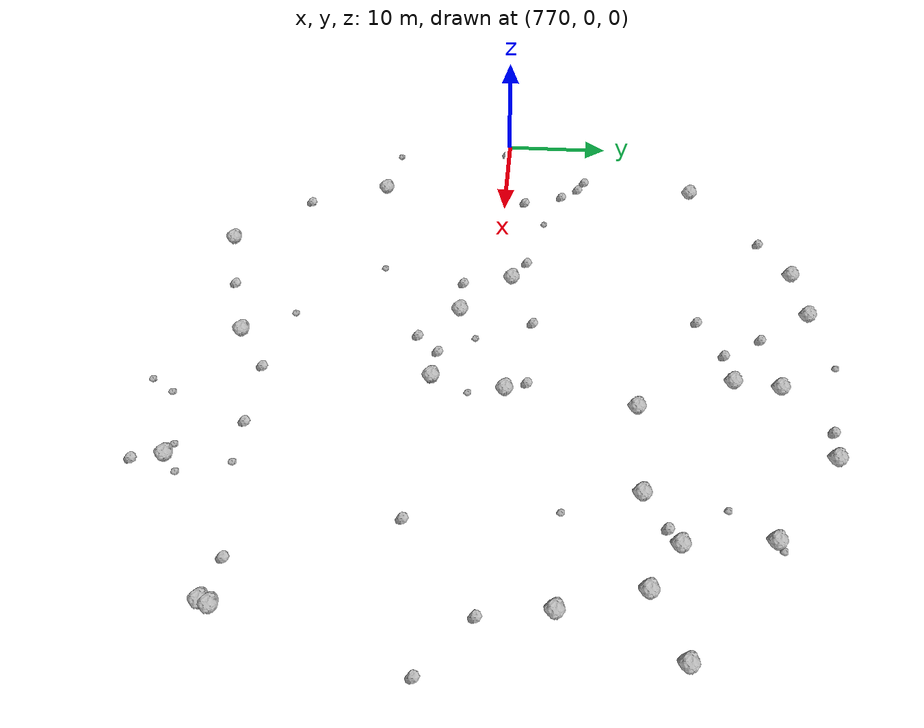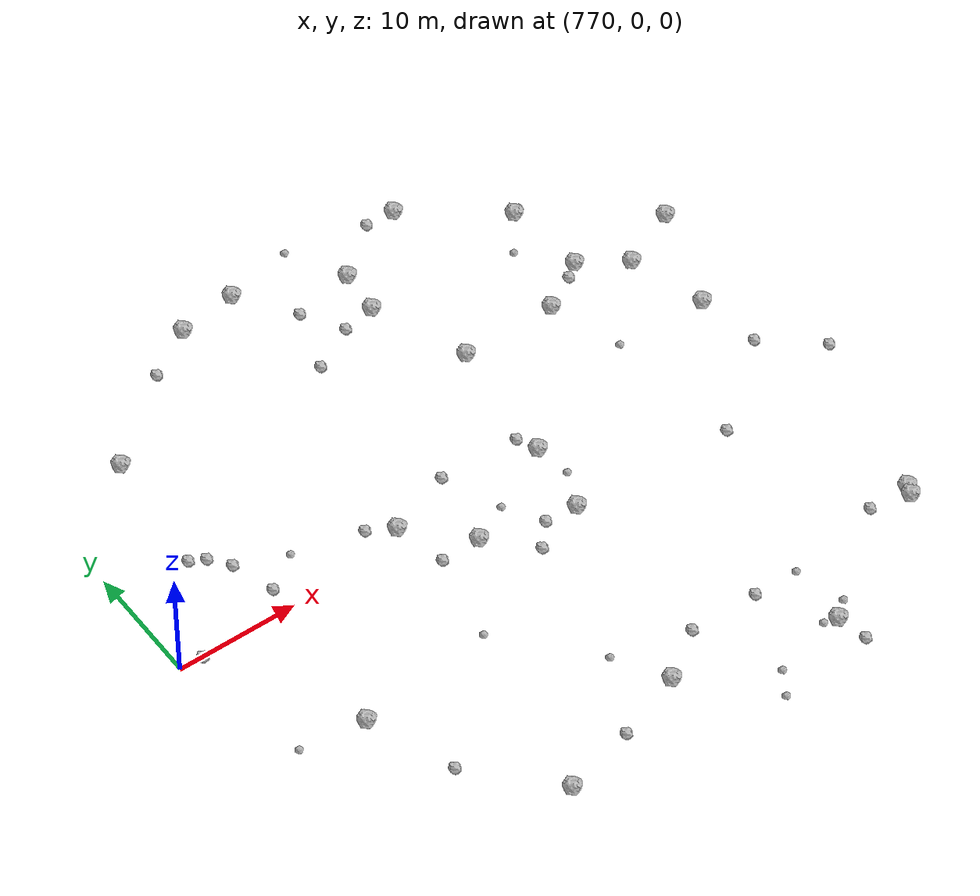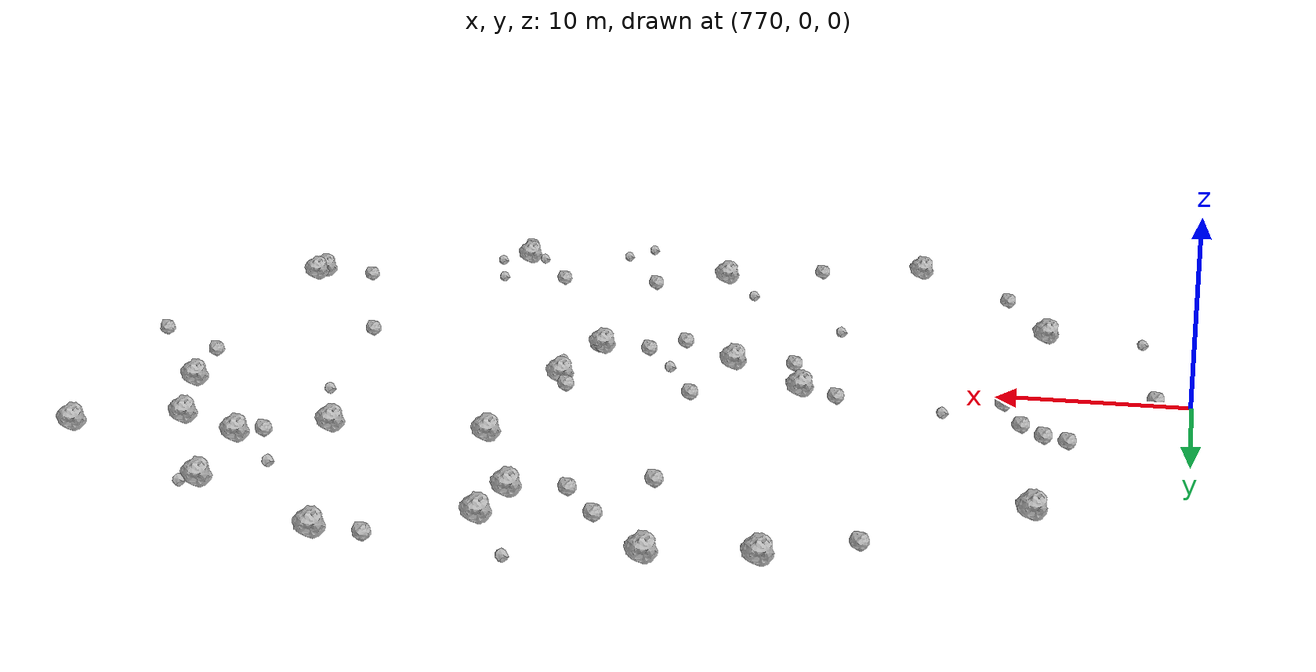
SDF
<sdf version="1.6">
 <world name="default">
  <include><uri>model://sun</uri></include>
  <model name="rock1_20_4">
   <include><uri>model://rock1</uri><pose>801.069976422622 20.078748137291107 0.5 0 0 0</pose></include>
  </model>
  <model name="rock1_20_5">
   <include><uri>model://rock1</uri><pose>804.178209006997 12.081782294476277 0.5 0 0 0</pose></include>
  </model>
  <model name="rock1_20_6">
   <include><uri>model://rock1</uri><pose>819.9806219164418 12.28699054576007 0.5 0 0 0</pose></include>
  </model>
  <model name="rock1_20_7">
   <include><uri>model://rock1</uri><pose>793.1610446389736 27.39999369383407 0.5 0 0 0</pose></include>
  </model>
  <model name="rock1_20_8">
   <include><uri>model://rock1</uri><pose>821.8484288972861 5.817812789148789 0.5 0 0 0</pose></include>
  </model>
  <model name="rock1_20_9">
   <include><uri>model://rock1</uri><pose>816.3222026670322 14.710271592381837 0.5 0 0 0</pose></include>
  </model>
  <model name="rock1_20_10">
   <include><uri>model://rock1</uri><pose>797.9584795260737 -21.758113614595313 0.5 0 0 0</pose></include>
  </model>
  <model name="rock1_20_11">
   <include><uri>model://rock1</uri><pose>815.6514114269642 21.631238293047993 0.5 0 0 0</pose></include>
  </model>
  <model name="rock1_20_12">
   <include><uri>model://rock1</uri><pose>802.0379653599541 -4.835314926236304 0.5 0 0 0</pose></include>
  </model>
  <model name="rock1_20_13">
   <include><uri>model://rock1</uri><pose>794.378756183995 -3.11591462428364 0.5 0 0 0</pose></include>
  </model>
  <model name="rock1_20_14">
   <include><uri>model://rock1</uri><pose>808.1970384261424 27.264305149074936 0.5 0 0 0</pose></include>
  </model>
  <model name="rock1_20_15">
   <include><uri>model://rock1</uri><pose>824.9921686273381 14.616219591472309 0.5 0 0 0</pose></include>
  </model>
  <model name="rock1_20_16">
   <include><uri>model://rock1</uri><pose>812.224707252752 12.154324516579052 0.5 0 0 0</pose></include>
  </model>
  <model name="rock1_20_17">
   <include><uri>model://rock1</uri><pose>788.2042530408501 26.656675445883884 0.5 0 0 0</pose></include>
  </model>
  <model name="rock1_20_18">
   <include><uri>model://rock1</uri><pose>777.0351825357711 18.315417942275573 0.5 0 0 0</pose></include>
  </model>
  <model name="rock1_20_19">
   <include><uri>model://rock1</uri><pose>822.660484596484 -18.44237490201177 0.5 0 0 0</pose></include>
  </model>
  <model name="rock1_20_20">
   <include><uri>model://rock1</uri><pose>822.9556082863945 -17.682068416761275 0.5 0 0 0</pose></include>
  </model>
  <model name="rock1_20_21">
   <include><uri>model://rock1</uri><pose>790.0991013014509 1.2388591656285968 0.5 0 0 0</pose></include>
  </model>
  <model name="rock1_20_22">
   <include><uri>model://rock1</uri><pose>786.4048347191468 -25.346984360202676 0.5 0 0 0</pose></include>
  </model>
  <model name="rock1_20_23">
   <include><uri>model://rock1</uri><pose>802.986500322176 1.3150329846300828 0.5 0 0 0</pose></include>
  </model>
  <model name="rock1_20_24">
   <include><uri>model://rock1</uri><pose>778.0695231220017 -11.933511151313226 0.5 0 0 0</pose></include>
  </model>
  <model name="rock1_20_25">
   <include><uri>model://rock1</uri><pose>811.0502471301488 -24.472389418654657 0.5 0 0 0</pose></include>
  </model>
  <model name="rock1_20_26">
   <include><uri>model://rock1</uri><pose>801.4893059405915 23.89189652420356 0.5 0 0 0</pose></include>
  </model>
  <model name="rock2_20_0">
   <include><uri>model://rock2</uri><pose>802.2349687781324 3.114232884142858 0.3 0 0 0</pose></include>
  </model>
  <model name="rock2_20_1">
   <include><uri>model://rock2</uri><pose>815.1000293188879 13.89334294089479 0.3 0 0 0</pose></include>
  </model>
  <model name="rock2_20_2">
   <include><uri>model://rock2</uri><pose>788.0214718739351 2.5375088247494446 0.3 0 0 0</pose></include>
  </model>
  <model name="rock2_20_3">
   <include><uri>model://rock2</uri><pose>779.4462429869577 1.975058382993943 0.3 0 0 0</pose></include>
  </model>
  <model name="rock2_20_4">
   <include><uri>model://rock2</uri><pose>794.5622085728465 17.611115376947694 0.3 0 0 0</pose></include>
  </model>
  <model name="rock2_20_5">
   <include><uri>model://rock2</uri><pose>801.8218580024082 -19.031553691637143 0.3 0 0 0</pose></include>
  </model>
  <model name="rock2_20_6">
   <include><uri>model://rock2</uri><pose>805.712017109829 27.46212167140652 0.3 0 0 0</pose></include>
  </model>
  <model name="rock2_20_7">
   <include><uri>model://rock2</uri><pose>795.5512744151142 3.355145571226707 0.3 0 0 0</pose></include>
  </model>
  <model name="rock2_20_8">
   <include><uri>model://rock2</uri><pose>815.4579748174596 -5.438845192286738 0.3 0 0 0</pose></include>
  </model>
  <model name="rock2_20_9">
   <include><uri>model://rock2</uri><pose>807.5446102105651 -19.102074352749778 0.3 0 0 0</pose></include>
  </model>
  <model name="rock2_20_10">
   <include><uri>model://rock2</uri><pose>780.6546252448134 -19.032475489664876 0.3 0 0 0</pose></include>
  </model>
  <model name="rock2_20_11">
   <include><uri>model://rock2</uri><pose>799.3108223261578 -4.560587147164487 0.3 0 0 0</pose></include>
  </model>
  <model name="rock2_20_12">
   <include><uri>model://rock2</uri><pose>775.9329820159355 7.827605698747405 0.3 0 0 0</pose></include>
  </model>
  <model name="rock2_20_13">
   <include><uri>model://rock2</uri><pose>791.0117143595404 -3.0884047159040016 0.3 0 0 0</pose></include>
  </model>
  <model name="rock2_20_14">
   <include><uri>model://rock2</uri><pose>819.3692828102361 -17.685267133702823 0.3 0 0 0</pose></include>
  </model>
  <model name="rock2_20_15">
   <include><uri>model://rock2</uri><pose>777.1357707197836 7.172767214108248 0.3 0 0 0</pose></include>
  </model>
  <model name="rock2_20_16">
   <include><uri>model://rock2</uri><pose>826.9541109299057 -3.2236828666194874 0.3 0 0 0</pose></include>
  </model>
  <model name="rock2_20_17">
   <include><uri>model://rock2</uri><pose>784.0998634825648 24.201407521313158 0.3 0 0 0</pose></include>
  </model>
  <model name="rock2_20_18">
   <include><uri>model://rock2</uri><pose>822.6296852667695 0.4681877887789234 0.3 0 0 0</pose></include>
  </model>
  <model name="rock2_20_19">
   <include><uri>model://rock2</uri><pose>798.2596045838263 19.62508345633755 0.3 0 0 0</pose></include>
  </model>
  <model name="rock2_20_20">
   <include><uri>model://rock2</uri><pose>811.5335343212716 -26.995280234155384 0.3 0 0 0</pose></include>
  </model>
  <model name="rock2_20_21">
   <include><uri>model://rock2</uri><pose>797.6043538034522 -6.454726022813865 0.3 0 0 0</pose></include>
  </model>
  <model name="rock2_20_22">
   <include><uri>model://rock2</uri><pose>778.339332853487 5.573858882046579 0.3 0 0 0</pose></include>
  </model>
  <model name="rock2_20_23">
   <include><uri>model://rock2</uri><pose>771.8222868314297 -0.17829008905250632 0.3 0 0 0</pose></include>
  </model>
  <model name="rock2_20_24">
   <include><uri>model://rock2</uri><pose>796.3068693660434 22.90635935265098 0.3 0 0 0</pose></include>
  </model>
  <model name="rock2_20_25">
   <include><uri>model://rock2</uri><pose>802.2199123598899 -4.681504602194099 0.3 0 0 0</pose></include>
  </model>
  <model name="rock2_20_26">
   <include><uri>model://rock2</uri><pose>792.3259487437359 -23.72698396172496 0.3 0 0 0</pose></include>
  </model>
  <model name="rock3_20_0">
   <include><uri>model://rock3</uri><pose>809.9403931578555 -24.101690486771403 0.2 0 0 0</pose></include>
  </model>
  <model name="rock3_20_1">
   <include><uri>model://rock3</uri><pose>814.150964864358 6.10674226139718 0.2 0 0 0</pose></include>
  </model>
  <model name="rock3_20_2">
   <include><uri>model://rock3</uri><pose>804.8537554373944 -25.773287875425744 0.2 0 0 0</pose></include>
  </model>
  <model name="rock3_20_3">
   <include><uri>model://rock3</uri><pose>813.2115645841542 18.43037113180941 0.2 0 0 0</pose></include>
  </model>
  <model name="rock3_20_4">
   <include><uri>model://rock3</uri><pose>772.662270382722 -11.170843667443663 0.2 0 0 0</pose></include>
  </model>
  <model name="rock3_20_5">
   <include><uri>model://rock3</uri><pose>812.4320255910444 -23.27786378982305 0.2 0 0 0</pose></include>
  </model>
  <model name="rock3_20_6">
   <include><uri>model://rock3</uri><pose>803.4203359710683 -1.6864724069006378 0.2 0 0 0</pose></include>
  </model>
  <model name="rock3_20_7">
   <include><uri>model://rock3</uri><pose>803.6361677465256 -27.774837078137985 0.2 0 0 0</pose></include>
  </model>
  <model name="rock3_20_8">
   <include><uri>model://rock3</uri><pose>782.3561426082972 3.9511837216616 0.2 0 0 0</pose></include>
  </model>
  <model name="rock3_20_9">
   <include><uri>model://rock3</uri><pose>789.3785541409112 -10.46381313978236 0.2 0 0 0</pose></include>
  </model>
  <model name="rock3_20_10">
   <include><uri>model://rock3</uri><pose>816.3067047126492 22.04294873008567 0.2 0 0 0</pose></include>
  </model>
  <model name="rock3_20_11">
   <include><uri>model://rock3</uri><pose>798.9380762480467 28.7893442504661 0.2 0 0 0</pose></include>
  </model>
  <model name="rock3_20_12">
   <include><uri>model://rock3</uri><pose>795.5198026948455 -17.525876962819396 0.2 0 0 0</pose></include>
  </model>
  <model name="rock3_20_13">
   <include><uri>model://rock3</uri><pose>797.4910466126129 -1.5097596208701773 0.2 0 0 0</pose></include>
  </model>
  <model name="rock3_20_14">
   <include><uri>model://rock3</uri><pose>811.2940774664609 -19.15803783079675 0.2 0 0 0</pose></include>
  </model>
 </world>
</sdf>
